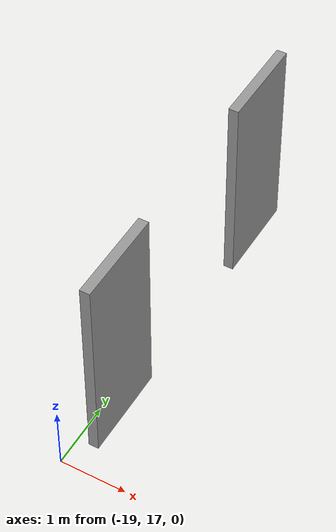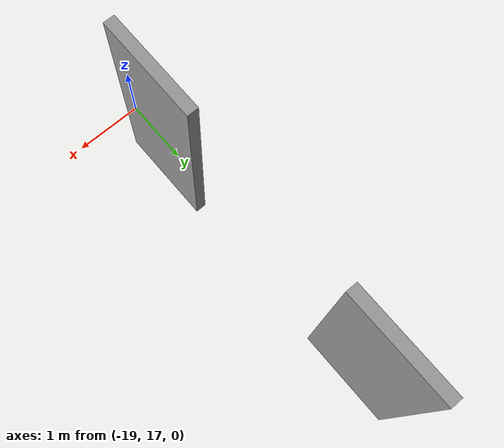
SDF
<?xml version='1.0'?>
<sdf version='1.6'>
  <model name='elevator_3.075'>
    <pose frame=''>-18.75 20 0 0 -0 0</pose>
    <link name='Wall_0'>
      <collision name='Wall_0_Collision'>
        <geometry>
          <box>
            <size>1.4 0.15 3.075</size>
          </box>
        </geometry>
        <pose frame=''>0 0 1.5375 0 -0 0</pose>
      </collision>
      <visual name='Wall_0_Visual'>
        <pose frame=''>0 0 1.5375 0 -0 0</pose>
        <geometry>
          <box>
            <size>1.4 0.15 3.075</size>
          </box>
        </geometry>
        <material>
          <script>
            <uri>file://media/materials/scripts/gazebo.material</uri>
            <name>Gazebo/Grey</name>
          </script>
          <ambient>1 1 1 1</ambient>
        </material>
      </visual>
      <pose frame=''>0 -1.875 0 0 0 -1.5708</pose>
    </link>
    <link name='Wall_2'>
      <collision name='Wall_2_Collision'>
        <geometry>
          <box>
            <size>1.4 0.15 3.075</size>
          </box>
        </geometry>
        <pose frame=''>0 0 1.5375 0 -0 0</pose>
      </collision>
      <visual name='Wall_2_Visual'>
        <pose frame=''>0 0 1.5375 0 -0 0</pose>
        <geometry>
          <box>
            <size>1.4 0.15 3.075</size>
          </box>
        </geometry>
        <material>
          <script>
            <uri>file://media/materials/scripts/gazebo.material</uri>
            <name>Gazebo/Grey</name>
          </script>
          <ambient>1 1 1 1</ambient>
        </material>
      </visual>
      <pose frame=''>0 1.875 0 0 0 -1.5708</pose>
    </link>
    <static>1</static>
  </model>
</sdf>
